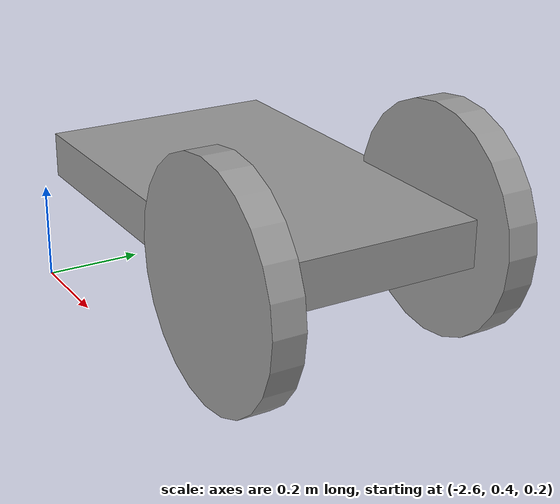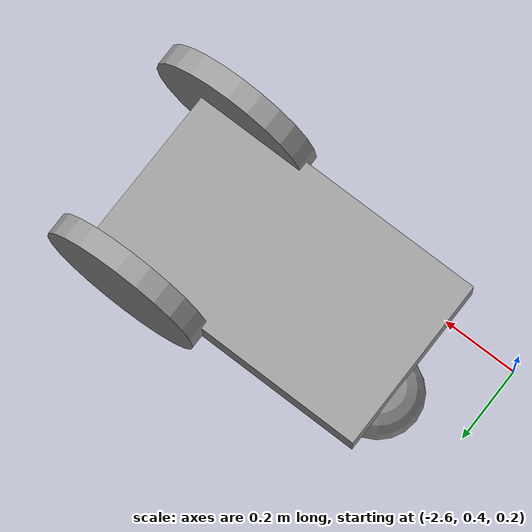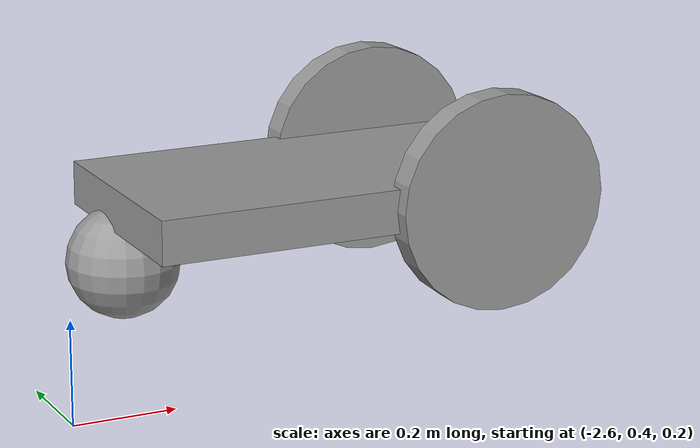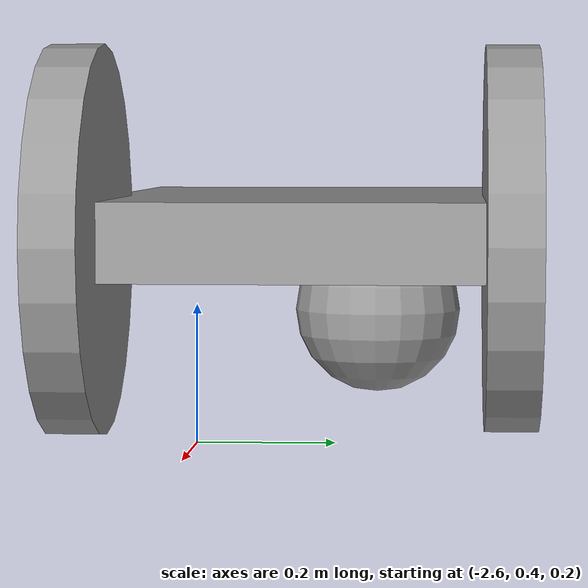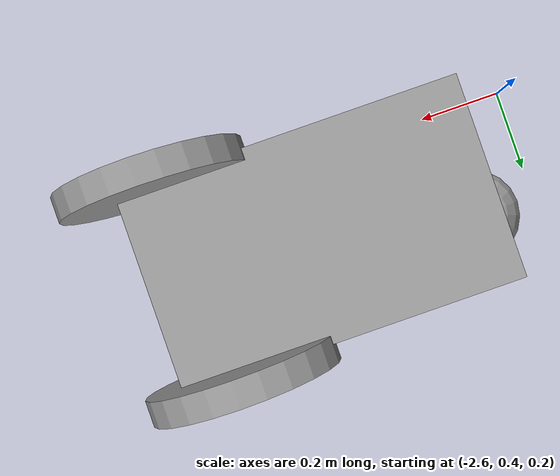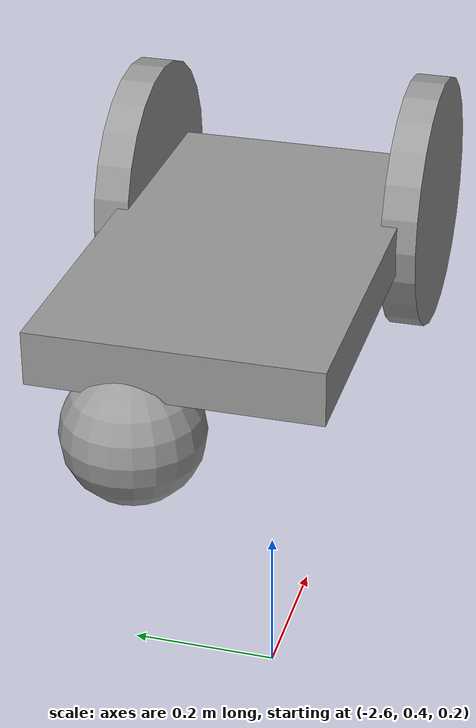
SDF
<?xml version='1.0'?>
<sdf version='1.6'>
  <model name='test_model'>
    <link name='link_0'>
      <pose frame=''>-2.05399 0.593548 0.530169 0 -0 0</pose>
      <inertial>
        <mass>0.0294741</mass>
        <inertia>
          <ixx>0.000519715</ixx>
          <ixy>0</ixy>
          <ixz>0</ixz>
          <iyy>0.00144138</iyy>
          <iyz>0</iyz>
          <izz>0.00192504</izz>
        </inertia>
        <pose frame=''>0 0 0 0 -0 0</pose>
      </inertial>
      <gravity>1</gravity>
      <self_collide>0</self_collide>
      <kinematic>0</kinematic>
      <visual name='visual'>
        <pose frame=''>0 0 0 0 -0 0</pose>
        <geometry>
          <box>
            <size>0.76125 0.451947 0.085678</size>
          </box>
        </geometry>
        <material>
          <lighting>1</lighting>
          <script>
            <uri>file://media/materials/scripts/gazebo.material</uri>
            <name>Gazebo/Grey</name>
          </script>
          <ambient>0.3 0.3 0.3 1</ambient>
          <diffuse>0.7 0.7 0.7 1</diffuse>
          <specular>0.01 0.01 0.01 1</specular>
          <emissive>0 0 0 1</emissive>
          <shader type='vertex'>
            <normal_map>__default__</normal_map>
          </shader>
        </material>
        <cast_shadows>1</cast_shadows>
        <transparency>0</transparency>
      </visual>
      <collision name='collision'>
        <laser_retro>0</laser_retro>
        <max_contacts>10</max_contacts>
        <pose frame=''>0 0 0 0 -0 0</pose>
        <geometry>
          <box>
            <size>0.76125 0.451947 0.085678</size>
          </box>
        </geometry>
        <surface>
          <friction>
            <ode>
              <mu>1</mu>
              <mu2>1</mu2>
              <fdir1>0 0 0</fdir1>
              <slip1>0</slip1>
              <slip2>0</slip2>
            </ode>
            <torsional>
              <coefficient>1</coefficient>
              <patch_radius>0</patch_radius>
              <surface_radius>0</surface_radius>
              <use_patch_radius>1</use_patch_radius>
              <ode>
                <slip>0</slip>
              </ode>
            </torsional>
          </friction>
          <bounce>
            <restitution_coefficient>0</restitution_coefficient>
            <threshold>1e+06</threshold>
          </bounce>
          <contact>
            <collide_without_contact>0</collide_without_contact>
            <collide_without_contact_bitmask>1</collide_without_contact_bitmask>
            <collide_bitmask>1</collide_bitmask>
            <ode>
              <soft_cfm>0</soft_cfm>
              <soft_erp>0.2</soft_erp>
              <kp>1e+13</kp>
              <kd>1</kd>
              <max_vel>0.01</max_vel>
              <min_depth>0</min_depth>
            </ode>
            <bullet>
              <split_impulse>1</split_impulse>
              <split_impulse_penetration_threshold>-0.01</split_impulse_penetration_threshold>
              <soft_cfm>0</soft_cfm>
              <soft_erp>0.2</soft_erp>
              <kp>1e+13</kp>
              <kd>1</kd>
            </bullet>
          </contact>
        </surface>
      </collision>
    </link>
    <link name='link_1'>
      <pose frame=''>-2.39482 0.666954 0.409492 0 -0 0</pose>
      <inertial>
        <mass>0.0107457</mass>
        <inertia>
          <ixx>5.23272e-05</ixx>
          <ixy>0</ixy>
          <ixz>0</ixz>
          <iyy>5.23272e-05</iyy>
          <iyz>0</iyz>
          <izz>5.23272e-05</izz>
        </inertia>
        <pose frame=''>0 0 0 0 -0 0</pose>
      </inertial>
      <visual name='visual'>
        <pose frame=''>0 0 0 0 -0 0</pose>
        <geometry>
          <sphere>
            <radius>0.110335</radius>
          </sphere>
        </geometry>
        <material>
          <lighting>1</lighting>
          <script>
            <uri>file://media/materials/scripts/gazebo.material</uri>
            <name>Gazebo/Grey</name>
          </script>
          <ambient>0.3 0.3 0.3 1</ambient>
          <diffuse>0.7 0.7 0.7 1</diffuse>
          <specular>0.01 0.01 0.01 1</specular>
          <emissive>0 0 0 1</emissive>
        </material>
        <cast_shadows>1</cast_shadows>
        <transparency>0</transparency>
      </visual>
      <collision name='collision'>
        <laser_retro>0</laser_retro>
        <max_contacts>10</max_contacts>
        <pose frame=''>0 0 0 0 -0 0</pose>
        <geometry>
          <sphere>
            <radius>0.110335</radius>
          </sphere>
        </geometry>
        <surface>
          <friction>
            <ode>
              <mu>1</mu>
              <mu2>1</mu2>
              <fdir1>0 0 0</fdir1>
              <slip1>0</slip1>
              <slip2>0</slip2>
            </ode>
            <torsional>
              <coefficient>1</coefficient>
              <patch_radius>0</patch_radius>
              <surface_radius>0</surface_radius>
              <use_patch_radius>1</use_patch_radius>
              <ode>
                <slip>0</slip>
              </ode>
            </torsional>
          </friction>
          <bounce>
            <restitution_coefficient>0</restitution_coefficient>
            <threshold>1e+06</threshold>
          </bounce>
          <contact>
            <collide_without_contact>0</collide_without_contact>
            <collide_without_contact_bitmask>1</collide_without_contact_bitmask>
            <collide_bitmask>1</collide_bitmask>
            <ode>
              <soft_cfm>0</soft_cfm>
              <soft_erp>0.2</soft_erp>
              <kp>1e+13</kp>
              <kd>1</kd>
              <max_vel>0.01</max_vel>
              <min_depth>0</min_depth>
            </ode>
            <bullet>
              <split_impulse>1</split_impulse>
              <split_impulse_penetration_threshold>-0.01</split_impulse_penetration_threshold>
              <soft_cfm>0</soft_cfm>
              <soft_erp>0.2</soft_erp>
              <kp>1e+13</kp>
              <kd>1</kd>
            </bullet>
          </contact>
        </surface>
      </collision>
    </link>
    <link name='link_3'>
      <pose frame=''>-1.79937 0.829847 0.530169 0 -0 0</pose>
      <inertial>
        <mass>0.0102286</mass>
        <inertia>
          <ixx>0.000116294</ixx>
          <ixy>0</ixy>
          <ixz>0</ixz>
          <iyy>0.000116294</iyy>
          <iyz>0</iyz>
          <izz>0.000226924</izz>
        </inertia>
        <pose frame=''>0 0 0 0 -0 0</pose>
      </inertial>
      <gravity>1</gravity>
      <self_collide>0</self_collide>
      <kinematic>0</kinematic>
      <visual name='visual'>
        <pose frame=''>0 0 0 1.5707 -0 0</pose>
        <geometry>
          <cylinder>
            <radius>0.210645</radius>
            <length>0.0576322</length>
          </cylinder>
        </geometry>
        <material>
          <lighting>1</lighting>
          <script>
            <uri>file://media/materials/scripts/gazebo.material</uri>
            <name>Gazebo/Grey</name>
          </script>
          <ambient>0.3 0.3 0.3 1</ambient>
          <diffuse>0.7 0.7 0.7 1</diffuse>
          <specular>0.01 0.01 0.01 1</specular>
          <emissive>0 0 0 1</emissive>
          <shader type='vertex'>
            <normal_map>__default__</normal_map>
          </shader>
        </material>
        <cast_shadows>1</cast_shadows>
        <transparency>0</transparency>
      </visual>
      <collision name='collision'>
        <laser_retro>0</laser_retro>
        <max_contacts>10</max_contacts>
        <pose frame=''>0 0 0 1.5707 -0 0</pose>
        <geometry>
          <cylinder>
            <radius>0.210645</radius>
            <length>0.057632</length>
          </cylinder>
        </geometry>
        <surface>
          <friction>
            <ode>
              <mu>1</mu>
              <mu2>1</mu2>
              <fdir1>0 0 0</fdir1>
              <slip1>0</slip1>
              <slip2>0</slip2>
            </ode>
            <torsional>
              <coefficient>1</coefficient>
              <patch_radius>0</patch_radius>
              <surface_radius>0</surface_radius>
              <use_patch_radius>1</use_patch_radius>
              <ode>
                <slip>0</slip>
              </ode>
            </torsional>
          </friction>
          <bounce>
            <restitution_coefficient>0</restitution_coefficient>
            <threshold>1e+06</threshold>
          </bounce>
          <contact>
            <collide_without_contact>0</collide_without_contact>
            <collide_without_contact_bitmask>1</collide_without_contact_bitmask>
            <collide_bitmask>1</collide_bitmask>
            <ode>
              <soft_cfm>0</soft_cfm>
              <soft_erp>0.2</soft_erp>
              <kp>1e+13</kp>
              <kd>1</kd>
              <max_vel>0.01</max_vel>
              <min_depth>0</min_depth>
            </ode>
            <bullet>
              <split_impulse>1</split_impulse>
              <split_impulse_penetration_threshold>-0.01</split_impulse_penetration_threshold>
              <soft_cfm>0</soft_cfm>
              <soft_erp>0.2</soft_erp>
              <kp>1e+13</kp>
              <kd>1</kd>
            </bullet>
          </contact>
        </surface>
      </collision>
    </link>
    <link name='link_3_clone'>
      <pose frame=''>-1.75182 0.364545 0.530169 0 -0 0</pose>
      <inertial>
        <mass>0.0102286</mass>
        <inertia>
          <ixx>0.000116294</ixx>
          <ixy>0</ixy>
          <ixz>0</ixz>
          <iyy>0.000116294</iyy>
          <iyz>0</iyz>
          <izz>0.000226924</izz>
        </inertia>
        <pose frame=''>0 0 0 0 -0 0</pose>
      </inertial>
      <self_collide>0</self_collide>
      <kinematic>0</kinematic>
      <visual name='visual'>
        <pose frame=''>0 0 0 1.5707 -0 0</pose>
        <geometry>
          <cylinder>
            <radius>0.210645</radius>
            <length>0.0576322</length>
          </cylinder>
        </geometry>
        <material>
          <lighting>1</lighting>
          <script>
            <uri>file://media/materials/scripts/gazebo.material</uri>
            <name>Gazebo/Grey</name>
          </script>
          <ambient>0.3 0.3 0.3 1</ambient>
          <diffuse>0.7 0.7 0.7 1</diffuse>
          <specular>0.01 0.01 0.01 1</specular>
          <emissive>0 0 0 1</emissive>
          <shader type='vertex'>
            <normal_map>__default__</normal_map>
          </shader>
        </material>
        <cast_shadows>1</cast_shadows>
        <transparency>0</transparency>
      </visual>
      <collision name='collision'>
        <laser_retro>0</laser_retro>
        <max_contacts>10</max_contacts>
        <pose frame=''>0 0 0 1.5707 -0 0</pose>
        <geometry>
          <cylinder>
            <radius>0.210645</radius>
            <length>0.057632</length>
          </cylinder>
        </geometry>
        <surface>
          <friction>
            <ode>
              <mu>1</mu>
              <mu2>1</mu2>
              <fdir1>0 0 0</fdir1>
              <slip1>0</slip1>
              <slip2>0</slip2>
            </ode>
            <torsional>
              <coefficient>1</coefficient>
              <patch_radius>0</patch_radius>
              <surface_radius>0</surface_radius>
              <use_patch_radius>1</use_patch_radius>
              <ode>
                <slip>0</slip>
              </ode>
            </torsional>
          </friction>
          <bounce>
            <restitution_coefficient>0</restitution_coefficient>
            <threshold>1e+06</threshold>
          </bounce>
          <contact>
            <collide_without_contact>0</collide_without_contact>
            <collide_without_contact_bitmask>1</collide_without_contact_bitmask>
            <collide_bitmask>1</collide_bitmask>
            <ode>
              <soft_cfm>0</soft_cfm>
              <soft_erp>0.2</soft_erp>
              <kp>1e+13</kp>
              <kd>1</kd>
              <max_vel>0.01</max_vel>
              <min_depth>0</min_depth>
            </ode>
            <bullet>
              <split_impulse>1</split_impulse>
              <split_impulse_penetration_threshold>-0.01</split_impulse_penetration_threshold>
              <soft_cfm>0</soft_cfm>
              <soft_erp>0.2</soft_erp>
              <kp>1e+13</kp>
              <kd>1</kd>
            </bullet>
          </contact>
        </surface>
      </collision>
    </link>
    <joint name='link_0_JOINT_0' type='revolute'>
      <parent>link_0</parent>
      <child>link_3_clone</child>
      <pose frame=''>0 0 0 0 -0 0</pose>
      <axis>
        <xyz>1 0 0</xyz>
        <use_parent_model_frame>0</use_parent_model_frame>
        <limit>
          <lower>-1.79769e+308</lower>
          <upper>1.79769e+308</upper>
          <effort>-1</effort>
          <velocity>-1</velocity>
        </limit>
        <dynamics>
          <spring_reference>0</spring_reference>
          <spring_stiffness>0</spring_stiffness>
          <damping>0</damping>
        </dynamics>
      </axis>
      <physics>
        <ode>
          <limit>
            <cfm>0</cfm>
            <erp>0.2</erp>
          </limit>
          <suspension>
            <cfm>0</cfm>
            <erp>0.2</erp>
          </suspension>
        </ode>
      </physics>
    </joint>
    <joint name='link_0_JOINT_1' type='revolute'>
      <parent>link_0</parent>
      <child>link_3</child>
      <pose frame=''>0 0 0 0 -0 0</pose>
      <axis>
        <xyz>1 0 0</xyz>
        <use_parent_model_frame>0</use_parent_model_frame>
        <limit>
          <lower>-1.79769e+308</lower>
          <upper>1.79769e+308</upper>
          <effort>-1</effort>
          <velocity>-1</velocity>
        </limit>
        <dynamics>
          <spring_reference>0</spring_reference>
          <spring_stiffness>0</spring_stiffness>
          <damping>0</damping>
        </dynamics>
      </axis>
      <physics>
        <ode>
          <limit>
            <cfm>0</cfm>
            <erp>0.2</erp>
          </limit>
          <suspension>
            <cfm>0</cfm>
            <erp>0.2</erp>
          </suspension>
        </ode>
      </physics>
    </joint>
    <joint name='link_0_JOINT_2' type='revolute'>
      <parent>link_0</parent>
      <child>link_1</child>
      <pose frame=''>0 0 0 0 -0 0</pose>
      <axis>
        <xyz>1 0 0</xyz>
        <use_parent_model_frame>0</use_parent_model_frame>
        <limit>
          <lower>-1.79769e+308</lower>
          <upper>1.79769e+308</upper>
          <effort>-1</effort>
          <velocity>-1</velocity>
        </limit>
        <dynamics>
          <spring_reference>0</spring_reference>
          <spring_stiffness>0</spring_stiffness>
          <damping>0</damping>
        </dynamics>
      </axis>
      <physics>
        <ode>
          <limit>
            <cfm>0</cfm>
            <erp>0.2</erp>
          </limit>
          <suspension>
            <cfm>0</cfm>
            <erp>0.2</erp>
          </suspension>
        </ode>
      </physics>
    </joint>
    <static>0</static>
    <allow_auto_disable>1</allow_auto_disable>
  </model>
</sdf>
